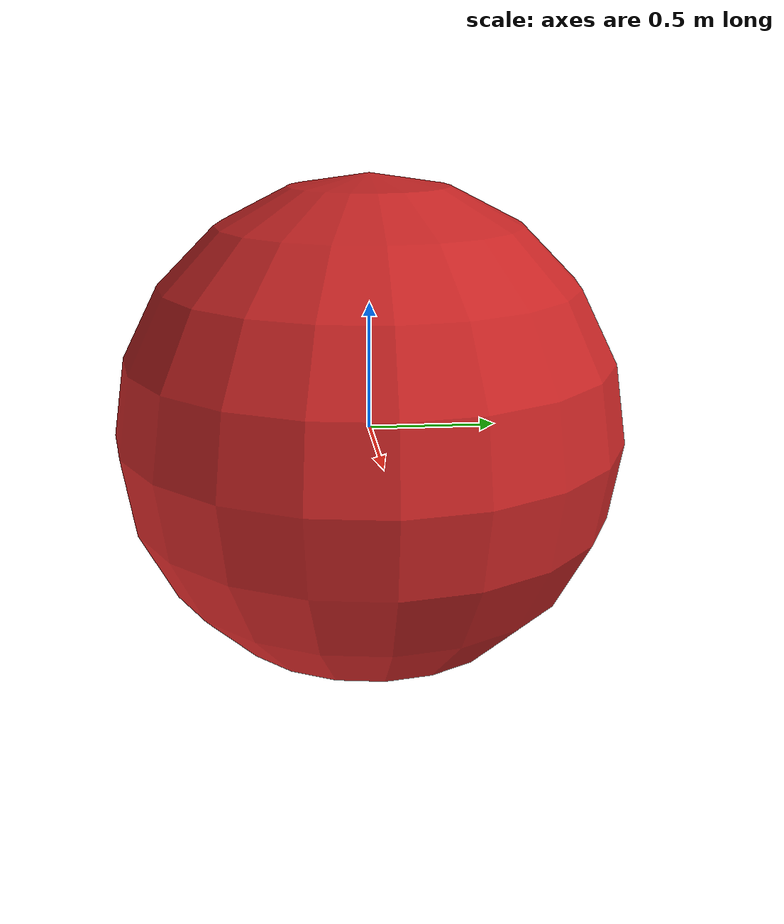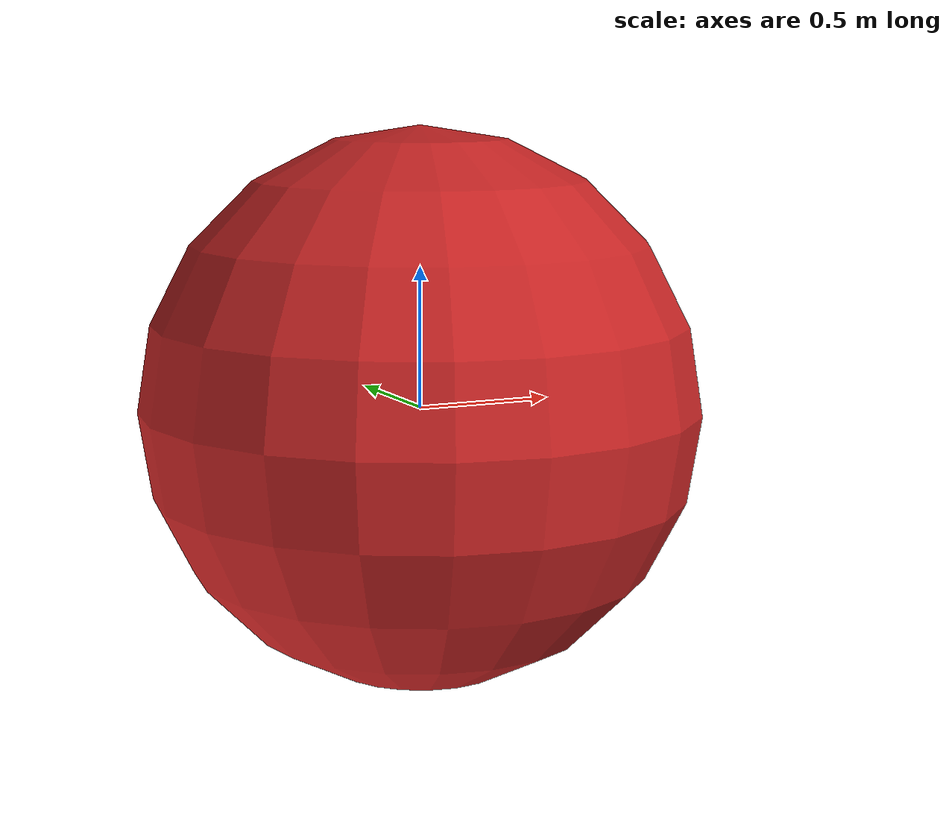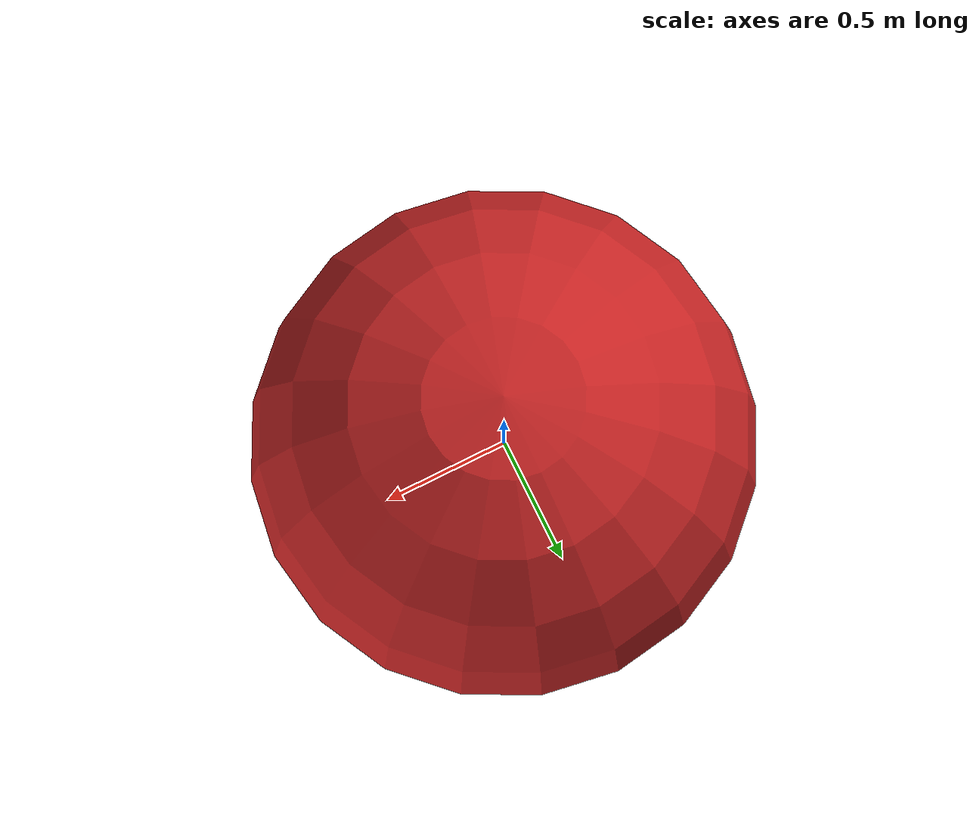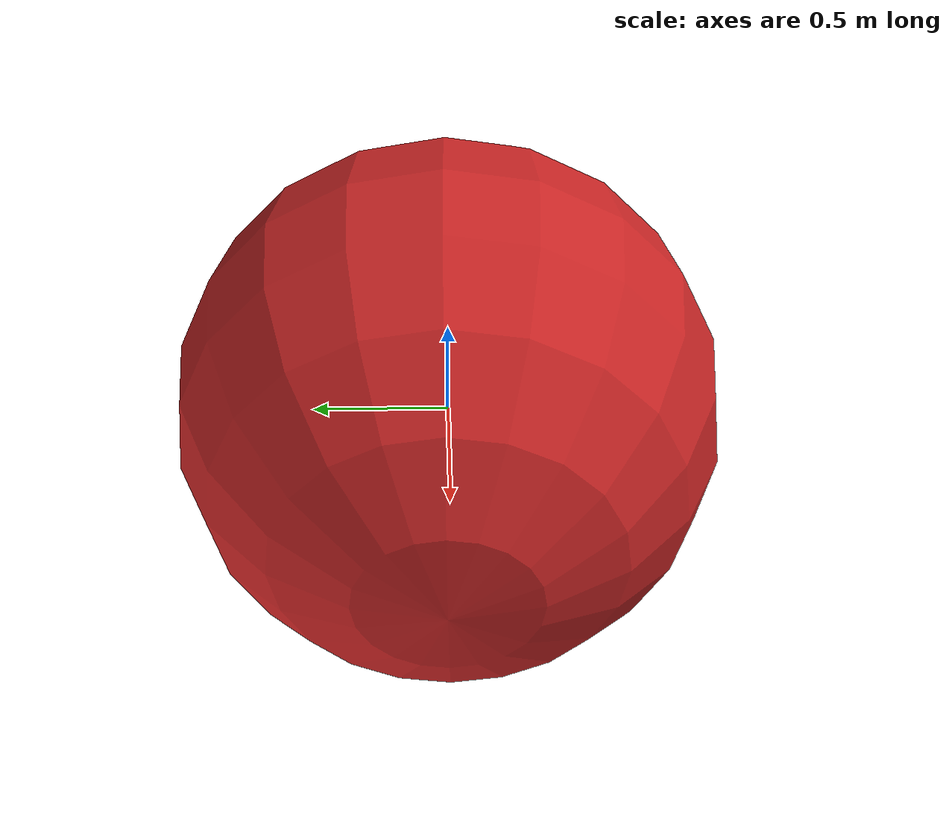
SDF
<?xml version="1.0"?>
<sdf version="1.6">
  <!-- Reference: https://www.polyformus.com/buoys/a-series -->
  <model name="polyform_a7_redball">
    <static>false</static>
    <pose>0 0 0 0 0 0</pose>
    <link name="base_link">
      <inertial>
        <!-- Reference: https://www.sailrite.com/PDF/Polyform-Buoys-Fenders-Accessories.pdf, page 8 -->
        <mass>48.98</mass>
      </inertial>
      <visual name="visual">
        <geometry>
          <sphere><radius>0.991</radius></sphere>
        </geometry>
        <material>
          <script>
            <uri>file://media/materials/scripts/gazebo.material</uri>
            <name>Gazebo/RedGlow</name>
          </script>
        </material>
      </visual>
      <collision name="collision">
        <geometry>
          <sphere><radius>0.991</radius></sphere>
        </geometry>
      </collision>
    </link>

    <plugin name="BuoyancyPlugin" filename="libbuoyancy_gazebo_plugin.so">
      <wave_model>ocean_waves</wave_model>
      <fluid_density>1000</fluid_density>
      <fluid_level>0.0</fluid_level>
      <linear_drag>20.0</linear_drag>
      <angular_drag>2.0</angular_drag>
      <buoyancy name="buoyancy">
        <link_name>base_link</link_name>
        <geometry>
          <sphere><radius>0.991</radius></sphere>
        </geometry>
      </buoyancy>
    </plugin>

  </model>
</sdf>
